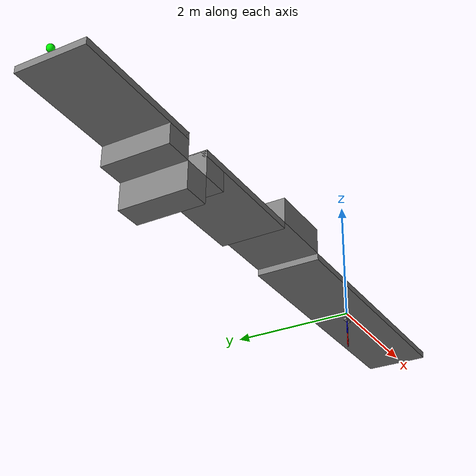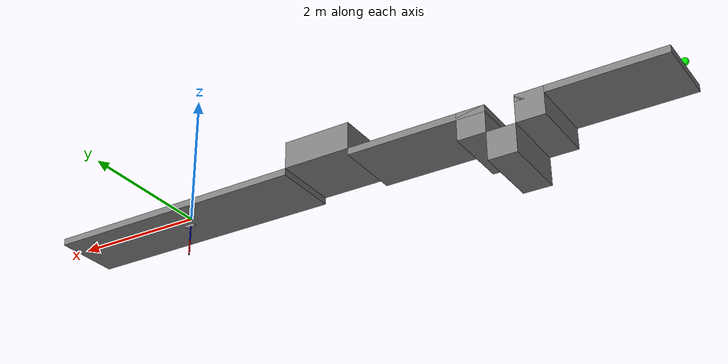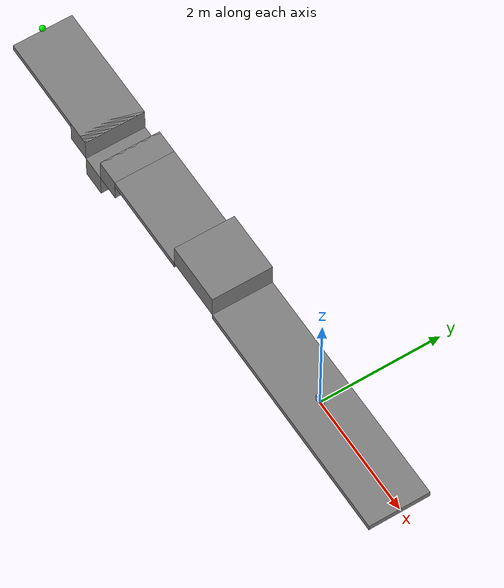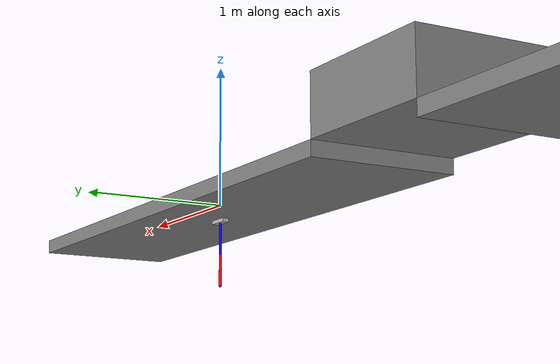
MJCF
<?xml version="1.0"?>
<mujoco model="biped_robot">
  <option timestep="0.001" gravity="0 0 -9.81" integrator="RK4" o_solref="-100000 -1000">
    <flag contact="enable" gravity="enable" override="enable"/>
  </option>

  <compiler angle="radian" coordinate="local" inertiafromgeom="false"/>

  <default>
    <geom friction="0.5 0.005 0.0001" condim="3"/>
    <joint damping="0.1" armature="0.01"/>
  </default>

  <asset>
    <texture type="skybox" builtin="gradient" rgb1="0.6 0.6 0.6" rgb2="0 0 0" width="512" height="512"/>
    <texture name="texplane" type="2d" builtin="checker" rgb1=".25 .25 .25" rgb2=".3 .3 .3" width="512" height="512" mark="cross" markrgb=".8 .8 .8"/>
    <material name="matplane" reflectance="0.3" texture="texplane" texrepeat="1 1" texuniform="true"/>
  </asset>

  <visual>
    <global offwidth="1280" offheight="720"/>
  </visual>

  <contact>
    <!-- Exclude all robot body collisions with each other -->
    <exclude body1="trunk" body2="upper_leg1"/>
    <exclude body1="trunk" body2="upper_leg2"/>
    <exclude body1="trunk" body2="lower_leg1"/>
    <exclude body1="trunk" body2="lower_leg2"/>
    <exclude body1="trunk" body2="foot1"/>
    <exclude body1="trunk" body2="foot2"/>

    <exclude body1="upper_leg1" body2="upper_leg2"/>
    <exclude body1="upper_leg1" body2="lower_leg1"/>
    <exclude body1="upper_leg1" body2="lower_leg2"/>
    <exclude body1="upper_leg1" body2="foot1"/>
    <exclude body1="upper_leg1" body2="foot2"/>

    <exclude body1="upper_leg2" body2="lower_leg1"/>
    <exclude body1="upper_leg2" body2="lower_leg2"/>
    <exclude body1="upper_leg2" body2="foot1"/>
    <exclude body1="upper_leg2" body2="foot2"/>

    <exclude body1="lower_leg1" body2="lower_leg2"/>
    <exclude body1="lower_leg1" body2="foot1"/>
    <exclude body1="lower_leg1" body2="foot2"/>

    <exclude body1="lower_leg2" body2="foot1"/>
    <exclude body1="lower_leg2" body2="foot2"/>

    <exclude body1="foot1" body2="foot2"/>
  </contact>

  <worldbody>
    <light directional="true" diffuse=".8 .8 .8" specular=".2 .2 .2" pos="0 0 5" dir="0 0 -1"/>

    <!-- Flat ground start -->
    <geom type="box" size="2.0 0.5 0.05"
          pos="0.0 0 -0.05" contype="1" conaffinity="1"/>

    <!-- Tall block (0.4m high, 1m long) -->
    <geom type="box" size="0.5 0.5 0.2"
          pos="-2.5 0 0.2" contype="1" conaffinity="1"/>

    <!-- Flat after block -->
    <geom type="box" size="1.0 0.5 0.05"
          pos="-4.0 0 -0.05" contype="1" conaffinity="1"/>

    <!-- Hole (negative obstacle) -->
    <geom type="box" size="0.2 0.5 0.2"
          pos="-4.8 0 -0.2" contype="1" conaffinity="1"/>

    <geom type="box" size="0.2 0.5 0.2"
          pos="-5.6 0 -0.2" contype="1" conaffinity="1"/>

    <geom type="box" size="0.2 0.5 0.2"
          pos="-5.2 0 -0.6" contype="1" conaffinity="1"/>

    <!-- Flat after hole -->
    <geom type="box" size="1.0 0.5 0.05"
          pos="-6.4 0 -0.05" contype="1" conaffinity="1"/>

    <!-- Optional visual markers -->
    <geom name="goal_marker"
          type="sphere"
          size="0.05"
          pos="-7.4 0 0.05"
          rgba="0 1 0 1"/>

    <!-- Main body/trunk -->
    <body name="trunk" pos="0 0 0.0">
      <!-- Planar joints for 2D motion: x translation, z (vertical) translation, rotation about y -->
      <joint name="root_x" type="slide" axis="1 0 0" limited="false"/>
      <joint name="root_z" type="slide" axis="0 0 1" limited="false"/>
      <joint name="root_theta" type="hinge" axis="0 1 0" limited="false"/>

      <!-- Trunk geometry: box with dimensions a=0.25m (height), b=0.15m (width/depth) -->
      <geom name="trunk_geom" type="box" size="0.075 0.025 0.125"
            rgba="0.7 0.7 0.7 1" mass="8.0"/>
      <inertial pos="0 0 0" mass="8.0" diaginertia="0.02167 0.02167 0.0075"/>

      <!-- Leg 1 (Left) -->
      <body name="upper_leg1" pos="0 0 -0.125">
        <!-- Hip joint q1: range -120° to 30° = -2.094 to 0.524 rad -->
        <joint name="q1" type="hinge" axis="0 1 0" range="-2.094 0.524"
               damping="0.1" armature="0.01"/>

        <geom name="upper_leg1_geom" type="capsule" fromto="0 0 0 0 0 -0.22" size="0.01"
              rgba="0 0 1 1"/>
        <inertial pos="0 0 -0.11" mass="0.25" diaginertia="0.00101667 0.00101667 0.00000625"/>

        <!-- Lower leg 1 -->
        <body name="lower_leg1" pos="0 0 -0.22">
          <!-- Knee joint q2: range 0° to 160° = 0 to 2.793 rad -->
          <joint name="q2" type="hinge" axis="0 1 0" range="0 2.793"
                 damping="0.1" armature="0.01"/>

          <geom name="lower_leg1_geom" type="capsule" fromto="0 0 0 0 0 -0.22" size="0.01"
                rgba="1 0 0 1"/>
          <inertial pos="0 0 -0.11" mass="0.25" diaginertia="0.00101667 0.00101667 0.00000625"/>

          <!-- Foot 1 with contact site -->
          <body name="foot1" pos="0 0 -0.22">
            <geom name="foot1_geom" type="sphere" size="0.01" rgba="0.2 0.2 0.8 1"
                  friction="0.9 0.005 0.0001"/>
            <inertial pos="0 0 0" mass="0.01" diaginertia="0.00001 0.00001 0.00001"/>
            <site name="foot1_site" pos="0 0 0" size="0.01" rgba="1 0 0 0.5"/>
          </body>
        </body>
      </body>

      <!-- Leg 2 (Right) -->
      <body name="upper_leg2" pos="0 0 -0.125">
        <!-- Hip joint q3 -->
        <joint name="q3" type="hinge" axis="0 1 0" range="-2.094 0.524"
               damping="0.1" armature="0.01"/>

        <geom name="upper_leg2_geom" type="capsule" fromto="0 0 0 0 0 -0.22" size="0.01"
              rgba="0 1 0 1"/>
        <inertial pos="0 0 -0.11" mass="0.25" diaginertia="0.00101667 0.00101667 0.00000625"/>

        <!-- Lower leg 2 -->
        <body name="lower_leg2" pos="0 0 -0.22">
          <!-- Knee joint q4 -->
          <joint name="q4" type="hinge" axis="0 1 0" range="0 2.793"
                 damping="0.1" armature="0.01"/>

          <geom name="lower_leg2_geom" type="capsule" fromto="0 0 0 0 0 -0.22" size="0.01"
                rgba="1 1 0 1"/>
          <inertial pos="0 0 -0.11" mass="0.25" diaginertia="0.00101667 0.00101667 0.00000625"/>

          <!-- Foot 2 with contact site -->
          <body name="foot2" pos="0 0 -0.22">
            <geom name="foot2_geom" type="sphere" size="0.01" rgba="0.8 0.8 0.2 1"
                  friction="0.9 0.005 0.0001"/>
            <inertial pos="0 0 0" mass="0.01" diaginertia="0.00001 0.00001 0.00001"/>
            <site name="foot2_site" pos="0 0 0" size="0.01" rgba="0 1 0 0.5"/>
          </body>
        </body>
      </body>
    </body>
  </worldbody>

  <actuator>
    <!-- Torque actuators with limits -->
    <motor name="tau_q1" joint="q1" gear="1" ctrllimited="true" ctrlrange="-30 30"/>
    <motor name="tau_q2" joint="q2" gear="1" ctrllimited="true" ctrlrange="-60 60"/>
    <motor name="tau_q3" joint="q3" gear="1" ctrllimited="true" ctrlrange="-30 30"/>
    <motor name="tau_q4" joint="q4" gear="1" ctrllimited="true" ctrlrange="-60 60"/>
  </actuator>

  <sensor>
    <framepos name="trunk_pos" objtype="body" objname="trunk"/>
  </sensor>
</mujoco>
